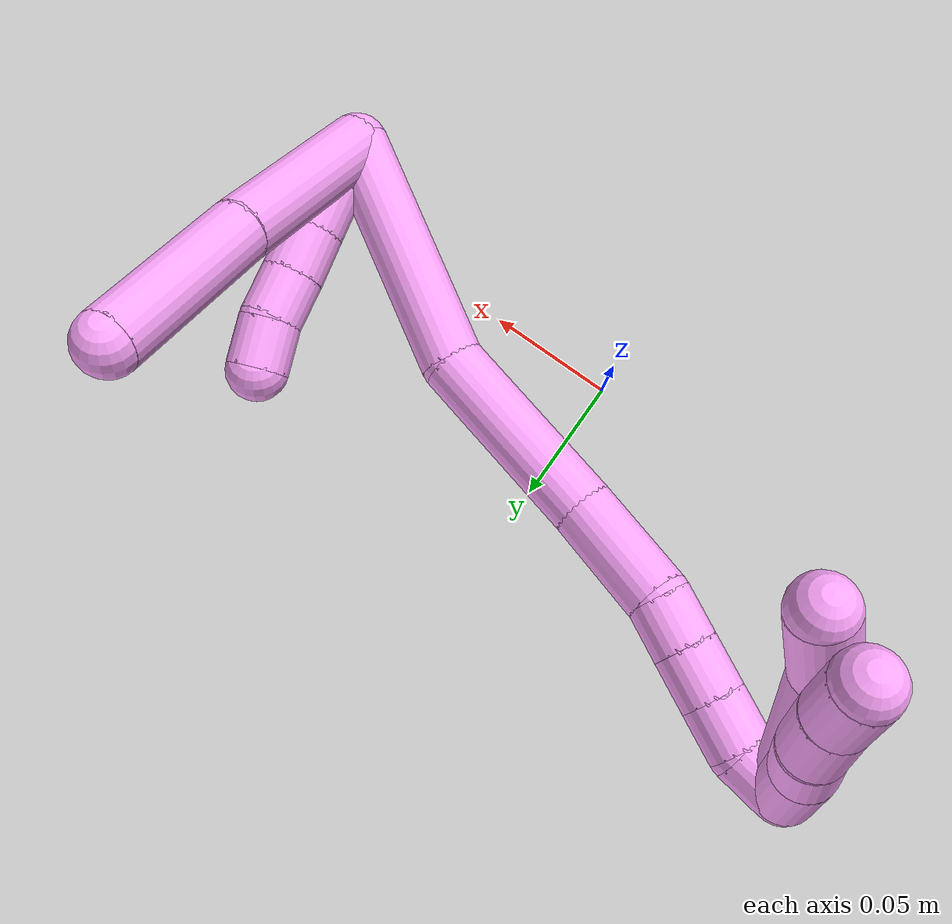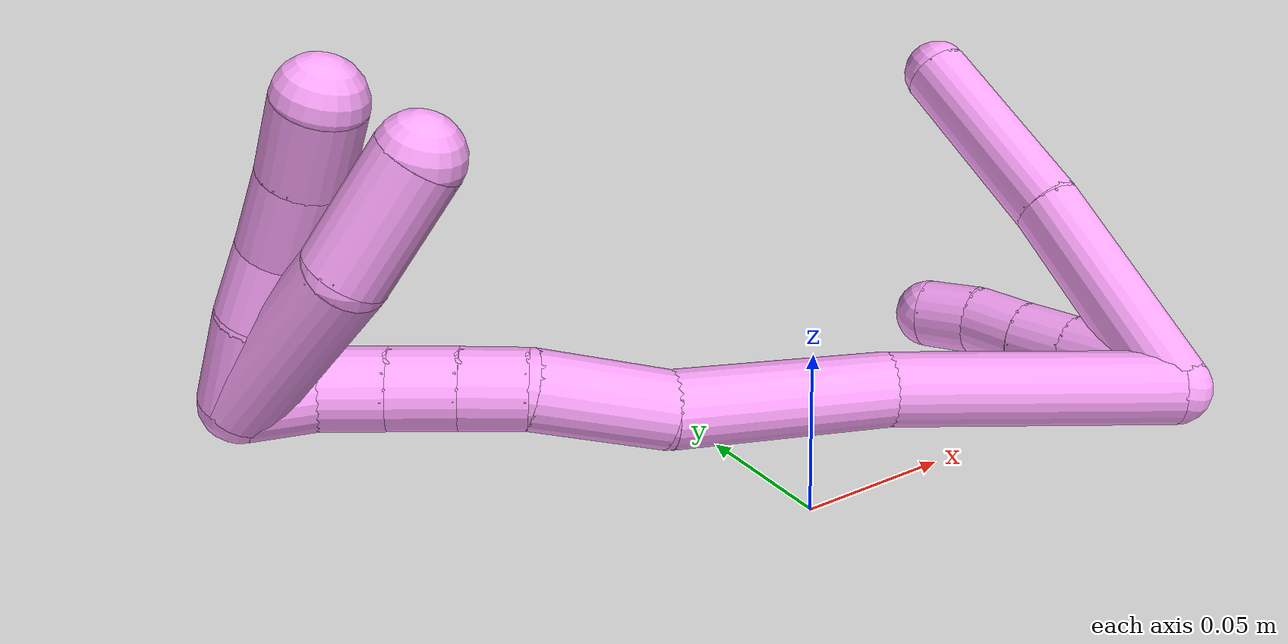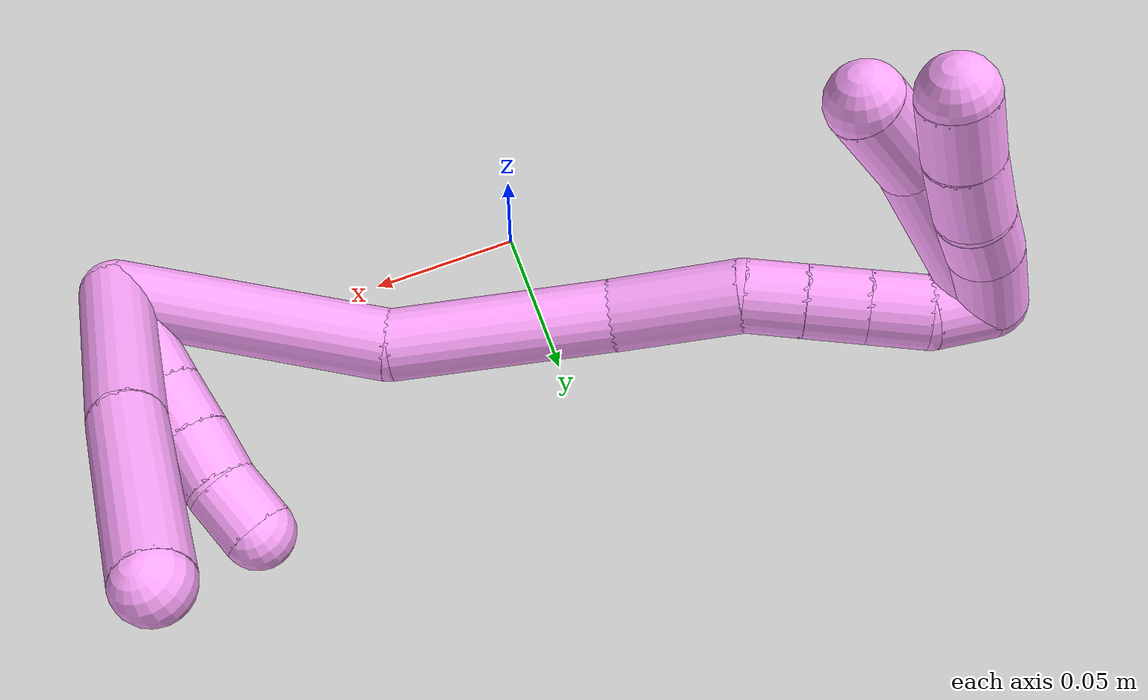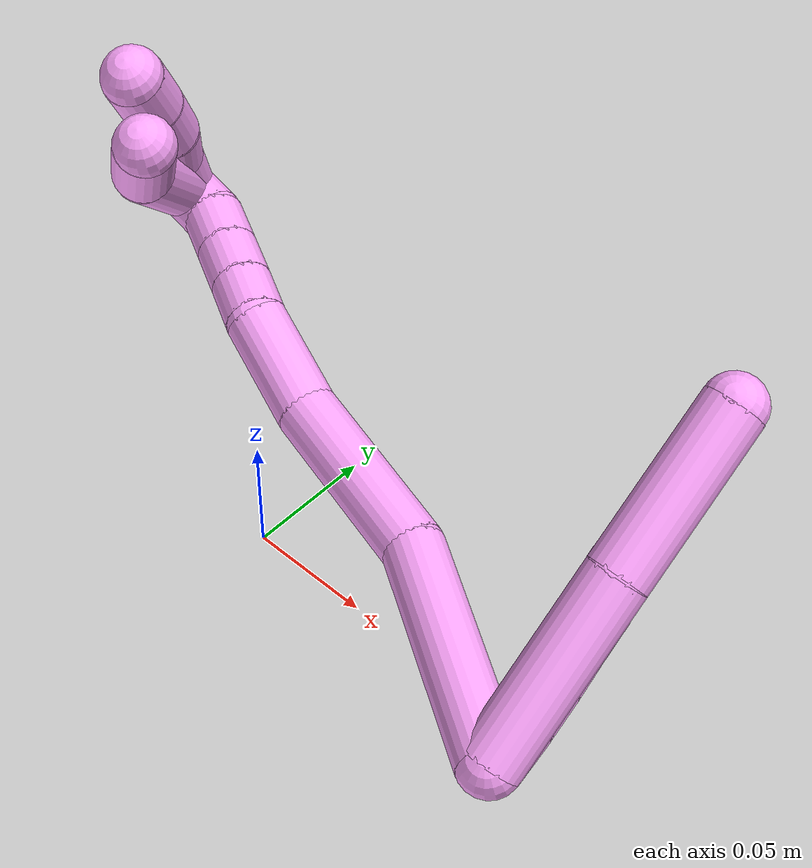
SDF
<sdf version="1.7">
 <world name="default">
  <model name="4">
   <static>0</static>
   <link name="4">
    <collision name="collision-cylinder-e_1_2_8">
     <pose>-0.002896 0.037525 0.011551 -1.27217 -0.073631 0.054386</pose>
     <geometry><cylinder><radius>0.0125</radius><length>0.078739</length></cylinder></geometry>
     <surface>
      <friction><ode><mu>1.16</mu><mu2>1.16</mu2><slip1>0</slip1><slip2>0</slip2></ode></friction>
      <contact><ode><kp>1e+06</kp><kd>1</kd><max_vel>0</max_vel><min_depth>0.001</min_depth></ode></contact>
     </surface>
    </collision>
    <visual name="visual-cylinder-e_1_2_8">
     <pose>-0.002896 0.037525 0.011551 -1.27217 -0.073631 0.054386</pose>
     <geometry><cylinder><radius>0.0125</radius><length>0.078739</length></cylinder></geometry>
     <material><ambient>1 0.65098 0.996078 1</ambient></material>
    </visual>
    <collision name="collision-cylinder-e_2_8_6">
     <pose>-0.008833 0.109686 0.030889 -1.34966 -0.085435 0.068375</pose>
     <geometry><cylinder><radius>0.0125</radius><length>0.071261</length></cylinder></geometry>
     <surface>
      <friction><ode><mu>1.16</mu><mu2>1.16</mu2><slip1>0</slip1><slip2>0</slip2></ode></friction>
      <contact><ode><kp>1e+06</kp><kd>1</kd><max_vel>0</max_vel><min_depth>0.001</min_depth></ode></contact>
     </surface>
    </collision>
    <visual name="visual-cylinder-e_2_8_6">
     <pose>-0.008833 0.109686 0.030889 -1.34966 -0.085435 0.068375</pose>
     <geometry><cylinder><radius>0.0125</radius><length>0.071261</length></cylinder></geometry>
     <material><ambient>1 0.65098 0.996078 1</ambient></material>
    </visual>
    <collision name="collision-cylinder-e_1_2_9">
     <pose>-0.001392 0.009529 -0.002695 -1.84638 -0.13969 0.184444</pose>
     <geometry><cylinder><radius>0.0125</radius><length>0.02</length></cylinder></geometry>
     <surface>
      <friction><ode><mu>1.16</mu><mu2>1.16</mu2><slip1>0</slip1><slip2>0</slip2></ode></friction>
      <contact><ode><kp>1e+06</kp><kd>1</kd><max_vel>0</max_vel><min_depth>0.001</min_depth></ode></contact>
     </surface>
    </collision>
    <visual name="visual-cylinder-e_1_2_9">
     <pose>-0.001392 0.009529 -0.002695 -1.84638 -0.13969 0.184444</pose>
     <geometry><cylinder><radius>0.0125</radius><length>0.02</length></cylinder></geometry>
     <material><ambient>1 0.65098 0.996078 1</ambient></material>
    </visual>
    <collision name="collision-cylinder-e_2_9_10">
     <pose>-0.00463 0.028066 -0.00932 -1.98229 -0.18563 0.282473</pose>
     <geometry><cylinder><radius>0.0125</radius><length>0.02</length></cylinder></geometry>
     <surface>
      <friction><ode><mu>1.16</mu><mu2>1.16</mu2><slip1>0</slip1><slip2>0</slip2></ode></friction>
      <contact><ode><kp>1e+06</kp><kd>1</kd><max_vel>0</max_vel><min_depth>0.001</min_depth></ode></contact>
     </surface>
    </collision>
    <visual name="visual-cylinder-e_2_9_10">
     <pose>-0.00463 0.028066 -0.00932 -1.98229 -0.18563 0.282473</pose>
     <geometry><cylinder><radius>0.0125</radius><length>0.02</length></cylinder></geometry>
     <material><ambient>1 0.65098 0.996078 1</ambient></material>
    </visual>
    <collision name="collision-cylinder-e_3_10_11">
     <pose>-0.008529 0.046169 -0.016865 -1.94902 -0.206796 0.303435</pose>
     <geometry><cylinder><radius>0.0125</radius><length>0.02</length></cylinder></geometry>
     <surface>
      <friction><ode><mu>1.16</mu><mu2>1.16</mu2><slip1>0</slip1><slip2>0</slip2></ode></friction>
      <contact><ode><kp>1e+06</kp><kd>1</kd><max_vel>0</max_vel><min_depth>0.001</min_depth></ode></contact>
     </surface>
    </collision>
    <visual name="visual-cylinder-e_3_10_11">
     <pose>-0.008529 0.046169 -0.016865 -1.94902 -0.206796 0.303435</pose>
     <geometry><cylinder><radius>0.0125</radius><length>0.02</length></cylinder></geometry>
     <material><ambient>1 0.65098 0.996078 1</ambient></material>
    </visual>
    <collision name="collision-cylinder-e_4_11_12">
     <pose>-0.012438 0.064502 -0.023827 -1.91843 -0.186626 0.265331</pose>
     <geometry><cylinder><radius>0.0125</radius><length>0.02</length></cylinder></geometry>
     <surface>
      <friction><ode><mu>1.16</mu><mu2>1.16</mu2><slip1>0</slip1><slip2>0</slip2></ode></friction>
      <contact><ode><kp>1e+06</kp><kd>1</kd><max_vel>0</max_vel><min_depth>0.001</min_depth></ode></contact>
     </surface>
    </collision>
    <visual name="visual-cylinder-e_4_11_12">
     <pose>-0.012438 0.064502 -0.023827 -1.91843 -0.186626 0.265331</pose>
     <geometry><cylinder><radius>0.0125</radius><length>0.02</length></cylinder></geometry>
     <material><ambient>1 0.65098 0.996078 1</ambient></material>
    </visual>
    <collision name="collision-cylinder-e_5_12_5">
     <pose>-0.017526 0.082071 -0.031665 -2.06526 -0.329155 0.54271</pose>
     <geometry><cylinder><radius>0.0125</radius><length>0.02</length></cylinder></geometry>
     <surface>
      <friction><ode><mu>1.16</mu><mu2>1.16</mu2><slip1>0</slip1><slip2>0</slip2></ode></friction>
      <contact><ode><kp>1e+06</kp><kd>1</kd><max_vel>0</max_vel><min_depth>0.001</min_depth></ode></contact>
     </surface>
    </collision>
    <visual name="visual-cylinder-e_5_12_5">
     <pose>-0.017526 0.082071 -0.031665 -2.06526 -0.329155 0.54271</pose>
     <geometry><cylinder><radius>0.0125</radius><length>0.02</length></cylinder></geometry>
     <material><ambient>1 0.65098 0.996078 1</ambient></material>
    </visual>
    <collision name="collision-cylinder-e_1_2_13">
     <pose>-0.041058 0.0226 -0.013909 -2.12248 -0.997001 1.54465</pose>
     <geometry><cylinder><radius>0.0125</radius><length>0.097774</length></cylinder></geometry>
     <surface>
      <friction><ode><mu>1.16</mu><mu2>1.16</mu2><slip1>0</slip1><slip2>0</slip2></ode></friction>
      <contact><ode><kp>1e+06</kp><kd>1</kd><max_vel>0</max_vel><min_depth>0.001</min_depth></ode></contact>
     </surface>
    </collision>
    <visual name="visual-cylinder-e_1_2_13">
     <pose>-0.041058 0.0226 -0.013909 -2.12248 -0.997001 1.54465</pose>
     <geometry><cylinder><radius>0.0125</radius><length>0.097774</length></cylinder></geometry>
     <material><ambient>1 0.65098 0.996078 1</ambient></material>
    </visual>
    <collision name="collision-cylinder-e_2_13_14">
     <pose>-0.119056 0.053187 -0.033747 -2.20944 -1.30776 1.97985</pose>
     <geometry><cylinder><radius>0.0125</radius><length>0.076512</length></cylinder></geometry>
     <surface>
      <friction><ode><mu>1.16</mu><mu2>1.16</mu2><slip1>0</slip1><slip2>0</slip2></ode></friction>
      <contact><ode><kp>1e+06</kp><kd>1</kd><max_vel>0</max_vel><min_depth>0.001</min_depth></ode></contact>
     </surface>
    </collision>
    <visual name="visual-cylinder-e_2_13_14">
     <pose>-0.119056 0.053187 -0.033747 -2.20944 -1.30776 1.97985</pose>
     <geometry><cylinder><radius>0.0125</radius><length>0.076512</length></cylinder></geometry>
     <material><ambient>1 0.65098 0.996078 1</ambient></material>
    </visual>
    <collision name="collision-cylinder-e_3_14_15">
     <pose>-0.17714 0.068486 -0.038757 -1.44564 -1.23542 1.1196</pose>
     <geometry><cylinder><radius>0.0125</radius><length>0.044781</length></cylinder></geometry>
     <surface>
      <friction><ode><mu>1.16</mu><mu2>1.16</mu2><slip1>0</slip1><slip2>0</slip2></ode></friction>
      <contact><ode><kp>1e+06</kp><kd>1</kd><max_vel>0</max_vel><min_depth>0.001</min_depth></ode></contact>
     </surface>
    </collision>
    <visual name="visual-cylinder-e_3_14_15">
     <pose>-0.17714 0.068486 -0.038757 -1.44564 -1.23542 1.1196</pose>
     <geometry><cylinder><radius>0.0125</radius><length>0.044781</length></cylinder></geometry>
     <material><ambient>1 0.65098 0.996078 1</ambient></material>
    </visual>
    <collision name="collision-cylinder-e_4_15_16">
     <pose>-0.207231 0.080088 -0.040114 -2.05887 -1.07343 1.56025</pose>
     <geometry><cylinder><radius>0.0125</radius><length>0.020363</length></cylinder></geometry>
     <surface>
      <friction><ode><mu>1.16</mu><mu2>1.16</mu2><slip1>0</slip1><slip2>0</slip2></ode></friction>
      <contact><ode><kp>1e+06</kp><kd>1</kd><max_vel>0</max_vel><min_depth>0.001</min_depth></ode></contact>
     </surface>
    </collision>
    <visual name="visual-cylinder-e_4_15_16">
     <pose>-0.207231 0.080088 -0.040114 -2.05887 -1.07343 1.56025</pose>
     <geometry><cylinder><radius>0.0125</radius><length>0.020363</length></cylinder></geometry>
     <material><ambient>1 0.65098 0.996078 1</ambient></material>
    </visual>
    <collision name="collision-cylinder-e_5_16_17">
     <pose>-0.225149 0.088571 -0.044775 -2.08761 -1.07753 1.59771</pose>
     <geometry><cylinder><radius>0.0125</radius><length>0.020369</length></cylinder></geometry>
     <surface>
      <friction><ode><mu>1.16</mu><mu2>1.16</mu2><slip1>0</slip1><slip2>0</slip2></ode></friction>
      <contact><ode><kp>1e+06</kp><kd>1</kd><max_vel>0</max_vel><min_depth>0.001</min_depth></ode></contact>
     </surface>
    </collision>
    <visual name="visual-cylinder-e_5_16_17">
     <pose>-0.225149 0.088571 -0.044775 -2.08761 -1.07753 1.59771</pose>
     <geometry><cylinder><radius>0.0125</radius><length>0.020369</length></cylinder></geometry>
     <material><ambient>1 0.65098 0.996078 1</ambient></material>
    </visual>
    <collision name="collision-cylinder-e_6_17_18">
     <pose>-0.242979 0.096895 -0.049498 -2.08607 -1.07886 1.59743</pose>
     <geometry><cylinder><radius>0.0125</radius><length>0.020104</length></cylinder></geometry>
     <surface>
      <friction><ode><mu>1.16</mu><mu2>1.16</mu2><slip1>0</slip1><slip2>0</slip2></ode></friction>
      <contact><ode><kp>1e+06</kp><kd>1</kd><max_vel>0</max_vel><min_depth>0.001</min_depth></ode></contact>
     </surface>
    </collision>
    <visual name="visual-cylinder-e_6_17_18">
     <pose>-0.242979 0.096895 -0.049498 -2.08607 -1.07886 1.59743</pose>
     <geometry><cylinder><radius>0.0125</radius><length>0.020104</length></cylinder></geometry>
     <material><ambient>1 0.65098 0.996078 1</ambient></material>
    </visual>
    <collision name="collision-cylinder-e_7_18_1">
     <pose>-0.261688 0.102231 -0.053427 -2.49323 -1.37101 2.36186</pose>
     <geometry><cylinder><radius>0.0125</radius><length>0.020096</length></cylinder></geometry>
     <surface>
      <friction><ode><mu>1.16</mu><mu2>1.16</mu2><slip1>0</slip1><slip2>0</slip2></ode></friction>
      <contact><ode><kp>1e+06</kp><kd>1</kd><max_vel>0</max_vel><min_depth>0.001</min_depth></ode></contact>
     </surface>
    </collision>
    <visual name="visual-cylinder-e_7_18_1">
     <pose>-0.261688 0.102231 -0.053427 -2.49323 -1.37101 2.36186</pose>
     <geometry><cylinder><radius>0.0125</radius><length>0.020096</length></cylinder></geometry>
     <material><ambient>1 0.65098 0.996078 1</ambient></material>
    </visual>
    <collision name="collision-cylinder-e_1_1_19">
     <pose>-0.26526 0.093688 -0.026062 0.32472 0.202597 0.033297</pose>
     <geometry><cylinder><radius>0.0125</radius><length>0.062377</length></cylinder></geometry>
     <surface>
      <friction><ode><mu>1.16</mu><mu2>1.16</mu2><slip1>0</slip1><slip2>0</slip2></ode></friction>
      <contact><ode><kp>1e+06</kp><kd>1</kd><max_vel>0</max_vel><min_depth>0.001</min_depth></ode></contact>
     </surface>
    </collision>
    <visual name="visual-cylinder-e_1_1_19">
     <pose>-0.26526 0.093688 -0.026062 0.32472 0.202597 0.033297</pose>
     <geometry><cylinder><radius>0.0125</radius><length>0.062377</length></cylinder></geometry>
     <material><ambient>1 0.65098 0.996078 1</ambient></material>
    </visual>
    <collision name="collision-cylinder-e_2_19_4">
     <pose>-0.252695 0.084013 0.020621 -0.004085 0.340923 -0.000703</pose>
     <geometry><cylinder><radius>0.0125</radius><length>0.037623</length></cylinder></geometry>
     <surface>
      <friction><ode><mu>1.16</mu><mu2>1.16</mu2><slip1>0</slip1><slip2>0</slip2></ode></friction>
      <contact><ode><kp>1e+06</kp><kd>1</kd><max_vel>0</max_vel><min_depth>0.001</min_depth></ode></contact>
     </surface>
    </collision>
    <visual name="visual-cylinder-e_2_19_4">
     <pose>-0.252695 0.084013 0.020621 -0.004085 0.340923 -0.000703</pose>
     <geometry><cylinder><radius>0.0125</radius><length>0.037623</length></cylinder></geometry>
     <material><ambient>1 0.65098 0.996078 1</ambient></material>
    </visual>
    <collision name="collision-cylinder-e_1_1_20">
     <pose>-0.271245 0.103573 -0.040235 -0.009337 0.019646 -9.2e-05</pose>
     <geometry><cylinder><radius>0.0125</radius><length>0.02957</length></cylinder></geometry>
     <surface>
      <friction><ode><mu>1.16</mu><mu2>1.16</mu2><slip1>0</slip1><slip2>0</slip2></ode></friction>
      <contact><ode><kp>1e+06</kp><kd>1</kd><max_vel>0</max_vel><min_depth>0.001</min_depth></ode></contact>
     </surface>
    </collision>
    <visual name="visual-cylinder-e_1_1_20">
     <pose>-0.271245 0.103573 -0.040235 -0.009337 0.019646 -9.2e-05</pose>
     <geometry><cylinder><radius>0.0125</radius><length>0.02957</length></cylinder></geometry>
     <material><ambient>1 0.65098 0.996078 1</ambient></material>
    </visual>
    <collision name="collision-cylinder-e_2_20_21">
     <pose>-0.269483 0.104384 -0.014729 -0.062677 0.136102 -0.004273</pose>
     <geometry><cylinder><radius>0.0125</radius><length>0.021692</length></cylinder></geometry>
     <surface>
      <friction><ode><mu>1.16</mu><mu2>1.16</mu2><slip1>0</slip1><slip2>0</slip2></ode></friction>
      <contact><ode><kp>1e+06</kp><kd>1</kd><max_vel>0</max_vel><min_depth>0.001</min_depth></ode></contact>
     </surface>
    </collision>
    <visual name="visual-cylinder-e_2_20_21">
     <pose>-0.269483 0.104384 -0.014729 -0.062677 0.136102 -0.004273</pose>
     <geometry><cylinder><radius>0.0125</radius><length>0.021692</length></cylinder></geometry>
     <material><ambient>1 0.65098 0.996078 1</ambient></material>
    </visual>
    <collision name="collision-cylinder-e_3_21_22">
     <pose>-0.267543 0.103953 0.008506 0.087994 0.037253 0.00164</pose>
     <geometry><cylinder><radius>0.0125</radius><length>0.025136</length></cylinder></geometry>
     <surface>
      <friction><ode><mu>1.16</mu><mu2>1.16</mu2><slip1>0</slip1><slip2>0</slip2></ode></friction>
      <contact><ode><kp>1e+06</kp><kd>1</kd><max_vel>0</max_vel><min_depth>0.001</min_depth></ode></contact>
     </surface>
    </collision>
    <visual name="visual-cylinder-e_3_21_22">
     <pose>-0.267543 0.103953 0.008506 0.087994 0.037253 0.00164</pose>
     <geometry><cylinder><radius>0.0125</radius><length>0.025136</length></cylinder></geometry>
     <material><ambient>1 0.65098 0.996078 1</ambient></material>
    </visual>
    <collision name="collision-cylinder-e_4_22_3">
     <pose>-0.267438 0.101598 0.032746 0.106264 -0.030749 -0.001635</pose>
     <geometry><cylinder><radius>0.0125</radius><length>0.023603</length></cylinder></geometry>
     <surface>
      <friction><ode><mu>1.16</mu><mu2>1.16</mu2><slip1>0</slip1><slip2>0</slip2></ode></friction>
      <contact><ode><kp>1e+06</kp><kd>1</kd><max_vel>0</max_vel><min_depth>0.001</min_depth></ode></contact>
     </surface>
    </collision>
    <visual name="visual-cylinder-e_4_22_3">
     <pose>-0.267438 0.101598 0.032746 0.106264 -0.030749 -0.001635</pose>
     <geometry><cylinder><radius>0.0125</radius><length>0.023603</length></cylinder></geometry>
     <material><ambient>1 0.65098 0.996078 1</ambient></material>
    </visual>
    <collision name="collision-sphere-3">
     <pose>-0.267801 0.100347 0.044475 0 -0 0</pose>
     <geometry><sphere><radius>0.0125</radius></sphere></geometry>
     <surface>
      <friction><ode><mu>1.16</mu><mu2>1.16</mu2><slip1>0</slip1><slip2>0</slip2></ode></friction>
      <contact><ode><kp>1e+06</kp><kd>1</kd><max_vel>0</max_vel><min_depth>0.001</min_depth></ode></contact>
     </surface>
    </collision>
    <visual name="visual-sphere-3">
     <pose>-0.267801 0.100347 0.044475 0 -0 0</pose>
     <geometry><sphere><radius>0.0125</radius></sphere></geometry>
     <material><ambient>1 0.65098 0.996078 1</ambient></material>
    </visual>
    <collision name="collision-sphere-22">
     <pose>-0.267075 0.10285 0.021016 0 -0 0</pose>
     <geometry><sphere><radius>0.0125</radius></sphere></geometry>
     <surface>
      <friction><ode><mu>1.16</mu><mu2>1.16</mu2><slip1>0</slip1><slip2>0</slip2></ode></friction>
      <contact><ode><kp>1e+06</kp><kd>1</kd><max_vel>0</max_vel><min_depth>0.001</min_depth></ode></contact>
     </surface>
    </collision>
    <visual name="visual-sphere-22">
     <pose>-0.267075 0.10285 0.021016 0 -0 0</pose>
     <geometry><sphere><radius>0.0125</radius></sphere></geometry>
     <material><ambient>1 0.65098 0.996078 1</ambient></material>
    </visual>
    <collision name="collision-sphere-21">
     <pose>-0.268011 0.105057 -0.004005 0 -0 0</pose>
     <geometry><sphere><radius>0.0125</radius></sphere></geometry>
     <surface>
      <friction><ode><mu>1.16</mu><mu2>1.16</mu2><slip1>0</slip1><slip2>0</slip2></ode></friction>
      <contact><ode><kp>1e+06</kp><kd>1</kd><max_vel>0</max_vel><min_depth>0.001</min_depth></ode></contact>
     </surface>
    </collision>
    <visual name="visual-sphere-21">
     <pose>-0.268011 0.105057 -0.004005 0 -0 0</pose>
     <geometry><sphere><radius>0.0125</radius></sphere></geometry>
     <material><ambient>1 0.65098 0.996078 1</ambient></material>
    </visual>
    <collision name="collision-sphere-20">
     <pose>-0.270955 0.103711 -0.025454 0 -0 0</pose>
     <geometry><sphere><radius>0.0125</radius></sphere></geometry>
     <surface>
      <friction><ode><mu>1.16</mu><mu2>1.16</mu2><slip1>0</slip1><slip2>0</slip2></ode></friction>
      <contact><ode><kp>1e+06</kp><kd>1</kd><max_vel>0</max_vel><min_depth>0.001</min_depth></ode></contact>
     </surface>
    </collision>
    <visual name="visual-sphere-20">
     <pose>-0.270955 0.103711 -0.025454 0 -0 0</pose>
     <geometry><sphere><radius>0.0125</radius></sphere></geometry>
     <material><ambient>1 0.65098 0.996078 1</ambient></material>
    </visual>
    <collision name="collision-sphere-4">
     <pose>-0.246405 0.084086 0.038349 0 -0 0</pose>
     <geometry><sphere><radius>0.0125</radius></sphere></geometry>
     <surface>
      <friction><ode><mu>1.16</mu><mu2>1.16</mu2><slip1>0</slip1><slip2>0</slip2></ode></friction>
      <contact><ode><kp>1e+06</kp><kd>1</kd><max_vel>0</max_vel><min_depth>0.001</min_depth></ode></contact>
     </surface>
    </collision>
    <visual name="visual-sphere-4">
     <pose>-0.246405 0.084086 0.038349 0 -0 0</pose>
     <geometry><sphere><radius>0.0125</radius></sphere></geometry>
     <material><ambient>1 0.65098 0.996078 1</ambient></material>
    </visual>
    <collision name="collision-sphere-11">
     <pose>-0.010583 0.055264 -0.020479 0 -0 0</pose>
     <geometry><sphere><radius>0.0125</radius></sphere></geometry>
     <surface>
      <friction><ode><mu>1.16</mu><mu2>1.16</mu2><slip1>0</slip1><slip2>0</slip2></ode></friction>
      <contact><ode><kp>1e+06</kp><kd>1</kd><max_vel>0</max_vel><min_depth>0.001</min_depth></ode></contact>
     </surface>
    </collision>
    <visual name="visual-sphere-11">
     <pose>-0.010583 0.055264 -0.020479 0 -0 0</pose>
     <geometry><sphere><radius>0.0125</radius></sphere></geometry>
     <material><ambient>1 0.65098 0.996078 1</ambient></material>
    </visual>
    <collision name="collision-sphere-10">
     <pose>-0.006476 0.037073 -0.013251 0 -0 0</pose>
     <geometry><sphere><radius>0.0125</radius></sphere></geometry>
     <surface>
      <friction><ode><mu>1.16</mu><mu2>1.16</mu2><slip1>0</slip1><slip2>0</slip2></ode></friction>
      <contact><ode><kp>1e+06</kp><kd>1</kd><max_vel>0</max_vel><min_depth>0.001</min_depth></ode></contact>
     </surface>
    </collision>
    <visual name="visual-sphere-10">
     <pose>-0.006476 0.037073 -0.013251 0 -0 0</pose>
     <geometry><sphere><radius>0.0125</radius></sphere></geometry>
     <material><ambient>1 0.65098 0.996078 1</ambient></material>
    </visual>
    <collision name="collision-sphere-6">
     <pose>-0.011873 0.144322 0.038676 0 -0 0</pose>
     <geometry><sphere><radius>0.0125</radius></sphere></geometry>
     <surface>
      <friction><ode><mu>1.16</mu><mu2>1.16</mu2><slip1>0</slip1><slip2>0</slip2></ode></friction>
      <contact><ode><kp>1e+06</kp><kd>1</kd><max_vel>0</max_vel><min_depth>0.001</min_depth></ode></contact>
     </surface>
    </collision>
    <visual name="visual-sphere-6">
     <pose>-0.011873 0.144322 0.038676 0 -0 0</pose>
     <geometry><sphere><radius>0.0125</radius></sphere></geometry>
     <material><ambient>1 0.65098 0.996078 1</ambient></material>
    </visual>
    <collision name="collision-sphere-9">
     <pose>-0.002785 0.019058 -0.005389 0 -0 0</pose>
     <geometry><sphere><radius>0.0125</radius></sphere></geometry>
     <surface>
      <friction><ode><mu>1.16</mu><mu2>1.16</mu2><slip1>0</slip1><slip2>0</slip2></ode></friction>
      <contact><ode><kp>1e+06</kp><kd>1</kd><max_vel>0</max_vel><min_depth>0.001</min_depth></ode></contact>
     </surface>
    </collision>
    <visual name="visual-sphere-9">
     <pose>-0.002785 0.019058 -0.005389 0 -0 0</pose>
     <geometry><sphere><radius>0.0125</radius></sphere></geometry>
     <material><ambient>1 0.65098 0.996078 1</ambient></material>
    </visual>
    <collision name="collision-sphere-2">
     <geometry><sphere><radius>0.0125</radius></sphere></geometry>
     <surface>
      <friction><ode><mu>1.16</mu><mu2>1.16</mu2><slip1>0</slip1><slip2>0</slip2></ode></friction>
      <contact><ode><kp>1e+06</kp><kd>1</kd><max_vel>0</max_vel><min_depth>0.001</min_depth></ode></contact>
     </surface>
    </collision>
    <visual name="visual-sphere-2">
     <geometry><sphere><radius>0.0125</radius></sphere></geometry>
     <material><ambient>1 0.65098 0.996078 1</ambient></material>
    </visual>
    <collision name="collision-sphere-19">
     <pose>-0.258984 0.083941 0.002892 0 -0 0</pose>
     <geometry><sphere><radius>0.0125</radius></sphere></geometry>
     <surface>
      <friction><ode><mu>1.16</mu><mu2>1.16</mu2><slip1>0</slip1><slip2>0</slip2></ode></friction>
      <contact><ode><kp>1e+06</kp><kd>1</kd><max_vel>0</max_vel><min_depth>0.001</min_depth></ode></contact>
     </surface>
    </collision>
    <visual name="visual-sphere-19">
     <pose>-0.258984 0.083941 0.002892 0 -0 0</pose>
     <geometry><sphere><radius>0.0125</radius></sphere></geometry>
     <material><ambient>1 0.65098 0.996078 1</ambient></material>
    </visual>
    <collision name="collision-sphere-8">
     <pose>-0.005792 0.07505 0.023103 0 -0 0</pose>
     <geometry><sphere><radius>0.0125</radius></sphere></geometry>
     <surface>
      <friction><ode><mu>1.16</mu><mu2>1.16</mu2><slip1>0</slip1><slip2>0</slip2></ode></friction>
      <contact><ode><kp>1e+06</kp><kd>1</kd><max_vel>0</max_vel><min_depth>0.001</min_depth></ode></contact>
     </surface>
    </collision>
    <visual name="visual-sphere-8">
     <pose>-0.005792 0.07505 0.023103 0 -0 0</pose>
     <geometry><sphere><radius>0.0125</radius></sphere></geometry>
     <material><ambient>1 0.65098 0.996078 1</ambient></material>
    </visual>
    <collision name="collision-sphere-12">
     <pose>-0.014293 0.073741 -0.027174 0 -0 0</pose>
     <geometry><sphere><radius>0.0125</radius></sphere></geometry>
     <surface>
      <friction><ode><mu>1.16</mu><mu2>1.16</mu2><slip1>0</slip1><slip2>0</slip2></ode></friction>
      <contact><ode><kp>1e+06</kp><kd>1</kd><max_vel>0</max_vel><min_depth>0.001</min_depth></ode></contact>
     </surface>
    </collision>
    <visual name="visual-sphere-12">
     <pose>-0.014293 0.073741 -0.027174 0 -0 0</pose>
     <geometry><sphere><radius>0.0125</radius></sphere></geometry>
     <material><ambient>1 0.65098 0.996078 1</ambient></material>
    </visual>
    <collision name="collision-sphere-5">
     <pose>-0.020758 0.0904 -0.036156 0 -0 0</pose>
     <geometry><sphere><radius>0.0125</radius></sphere></geometry>
     <surface>
      <friction><ode><mu>1.16</mu><mu2>1.16</mu2><slip1>0</slip1><slip2>0</slip2></ode></friction>
      <contact><ode><kp>1e+06</kp><kd>1</kd><max_vel>0</max_vel><min_depth>0.001</min_depth></ode></contact>
     </surface>
    </collision>
    <visual name="visual-sphere-5">
     <pose>-0.020758 0.0904 -0.036156 0 -0 0</pose>
     <geometry><sphere><radius>0.0125</radius></sphere></geometry>
     <material><ambient>1 0.65098 0.996078 1</ambient></material>
    </visual>
    <collision name="collision-sphere-13">
     <pose>-0.082116 0.0452 -0.027817 0 -0 0</pose>
     <geometry><sphere><radius>0.0125</radius></sphere></geometry>
     <surface>
      <friction><ode><mu>1.16</mu><mu2>1.16</mu2><slip1>0</slip1><slip2>0</slip2></ode></friction>
      <contact><ode><kp>1e+06</kp><kd>1</kd><max_vel>0</max_vel><min_depth>0.001</min_depth></ode></contact>
     </surface>
    </collision>
    <visual name="visual-sphere-13">
     <pose>-0.082116 0.0452 -0.027817 0 -0 0</pose>
     <geometry><sphere><radius>0.0125</radius></sphere></geometry>
     <material><ambient>1 0.65098 0.996078 1</ambient></material>
    </visual>
    <collision name="collision-sphere-14">
     <pose>-0.155996 0.061174 -0.039677 0 -0 0</pose>
     <geometry><sphere><radius>0.0125</radius></sphere></geometry>
     <surface>
      <friction><ode><mu>1.16</mu><mu2>1.16</mu2><slip1>0</slip1><slip2>0</slip2></ode></friction>
      <contact><ode><kp>1e+06</kp><kd>1</kd><max_vel>0</max_vel><min_depth>0.001</min_depth></ode></contact>
     </surface>
    </collision>
    <visual name="visual-sphere-14">
     <pose>-0.155996 0.061174 -0.039677 0 -0 0</pose>
     <geometry><sphere><radius>0.0125</radius></sphere></geometry>
     <material><ambient>1 0.65098 0.996078 1</ambient></material>
    </visual>
    <collision name="collision-sphere-15">
     <pose>-0.198283 0.075797 -0.037837 0 -0 0</pose>
     <geometry><sphere><radius>0.0125</radius></sphere></geometry>
     <surface>
      <friction><ode><mu>1.16</mu><mu2>1.16</mu2><slip1>0</slip1><slip2>0</slip2></ode></friction>
      <contact><ode><kp>1e+06</kp><kd>1</kd><max_vel>0</max_vel><min_depth>0.001</min_depth></ode></contact>
     </surface>
    </collision>
    <visual name="visual-sphere-15">
     <pose>-0.198283 0.075797 -0.037837 0 -0 0</pose>
     <geometry><sphere><radius>0.0125</radius></sphere></geometry>
     <material><ambient>1 0.65098 0.996078 1</ambient></material>
    </visual>
    <collision name="collision-sphere-16">
     <pose>-0.216178 0.084378 -0.042392 0 -0 0</pose>
     <geometry><sphere><radius>0.0125</radius></sphere></geometry>
     <surface>
      <friction><ode><mu>1.16</mu><mu2>1.16</mu2><slip1>0</slip1><slip2>0</slip2></ode></friction>
      <contact><ode><kp>1e+06</kp><kd>1</kd><max_vel>0</max_vel><min_depth>0.001</min_depth></ode></contact>
     </surface>
    </collision>
    <visual name="visual-sphere-16">
     <pose>-0.216178 0.084378 -0.042392 0 -0 0</pose>
     <geometry><sphere><radius>0.0125</radius></sphere></geometry>
     <material><ambient>1 0.65098 0.996078 1</ambient></material>
    </visual>
    <collision name="collision-sphere-17">
     <pose>-0.234119 0.092763 -0.047158 0 -0 0</pose>
     <geometry><sphere><radius>0.0125</radius></sphere></geometry>
     <surface>
      <friction><ode><mu>1.16</mu><mu2>1.16</mu2><slip1>0</slip1><slip2>0</slip2></ode></friction>
      <contact><ode><kp>1e+06</kp><kd>1</kd><max_vel>0</max_vel><min_depth>0.001</min_depth></ode></contact>
     </surface>
    </collision>
    <visual name="visual-sphere-17">
     <pose>-0.234119 0.092763 -0.047158 0 -0 0</pose>
     <geometry><sphere><radius>0.0125</radius></sphere></geometry>
     <material><ambient>1 0.65098 0.996078 1</ambient></material>
    </visual>
    <collision name="collision-sphere-18">
     <pose>-0.25184 0.101026 -0.051837 0 -0 0</pose>
     <geometry><sphere><radius>0.0125</radius></sphere></geometry>
     <surface>
      <friction><ode><mu>1.16</mu><mu2>1.16</mu2><slip1>0</slip1><slip2>0</slip2></ode></friction>
      <contact><ode><kp>1e+06</kp><kd>1</kd><max_vel>0</max_vel><min_depth>0.001</min_depth></ode></contact>
     </surface>
    </collision>
    <visual name="visual-sphere-18">
     <pose>-0.25184 0.101026 -0.051837 0 -0 0</pose>
     <geometry><sphere><radius>0.0125</radius></sphere></geometry>
     <material><ambient>1 0.65098 0.996078 1</ambient></material>
    </visual>
    <collision name="collision-sphere-1">
     <pose>-0.271535 0.103435 -0.055016 0 -0 0</pose>
     <geometry><sphere><radius>0.0125</radius></sphere></geometry>
     <surface>
      <friction><ode><mu>1.16</mu><mu2>1.16</mu2><slip1>0</slip1><slip2>0</slip2></ode></friction>
      <contact><ode><kp>1e+06</kp><kd>1</kd><max_vel>0</max_vel><min_depth>0.001</min_depth></ode></contact>
     </surface>
    </collision>
    <visual name="visual-sphere-1">
     <pose>-0.271535 0.103435 -0.055016 0 -0 0</pose>
     <geometry><sphere><radius>0.0125</radius></sphere></geometry>
     <material><ambient>1 0.65098 0.996078 1</ambient></material>
    </visual>
    <inertial>
     <pose>-0.12628 0.068672 -0.012566 0 -0 0</pose>
     <mass>0.75</mass>
     <inertia><ixx>0.000163</ixx><ixy>0</ixy><ixz>0</ixz><iyy>0.000255</iyy><iyz>0</iyz><izz>9e-06</izz></inertia>
    </inertial>
   </link>
   <pose>0.13667 -0.023654 0.011652 0.345709 0.162508 0.013121</pose>
  </model>
 </world>
</sdf>
